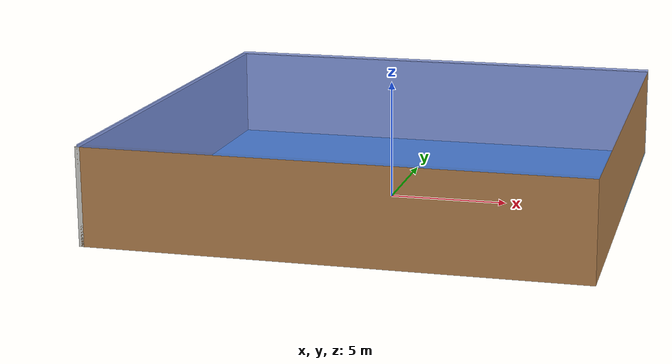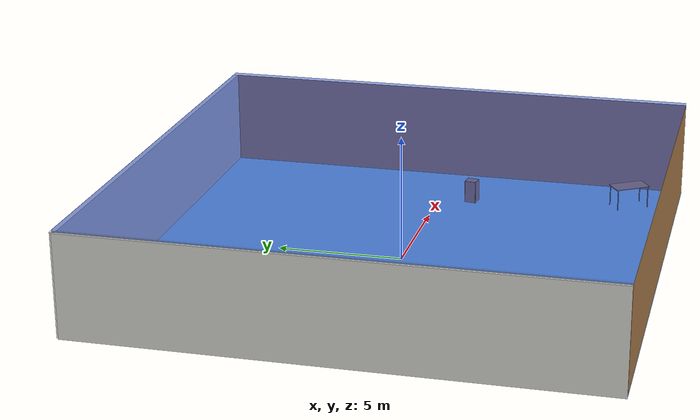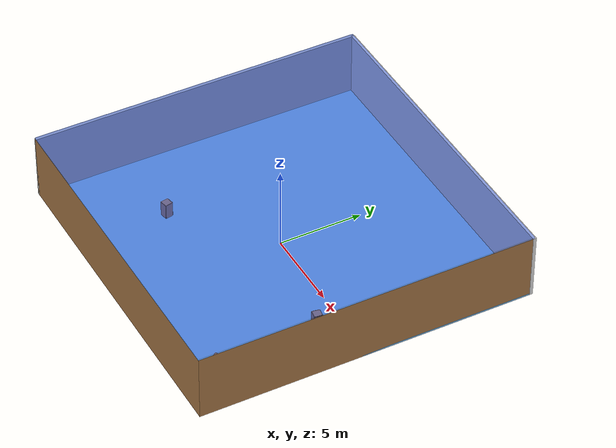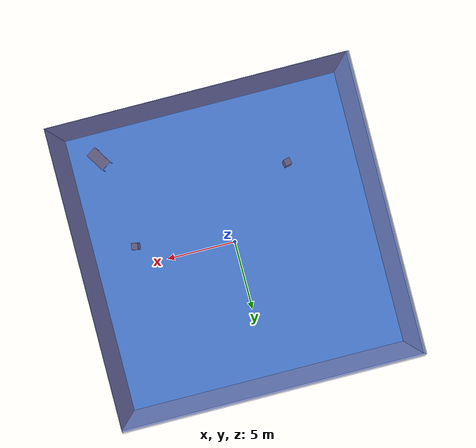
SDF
<sdf version="1.4">
 <world name="default">
  <physics type="ode">
   <max_step_size>0.001</max_step_size>
   <real_time_factor>1</real_time_factor>
   <real_time_update_rate>1000</real_time_update_rate>
   <gravity>0 0 -9.8</gravity>
  </physics>
  <scene><ambient>0.4 0.4 0.4 1</ambient><background>0.7 0.7 0.7 1</background><shadows>1</shadows></scene>
  <model name="Surrounding">
   <static>1</static>
   <link name="Ceiling">
    <collision name="Ceiling_Collision"><geometry><box><size>20 20 0.1</size></box></geometry></collision>
    <visual name="Ceiling_Visual">
     <geometry><box><size>20 20 0.1</size></box></geometry>
     <material>
      <script><uri>file://media/materials/scripts/gazebo.material</uri><name>Gazebo/BlueTransparent</name></script>
     </material>
    </visual>
    <pose>0 0 4.05 0 0 0</pose>
   </link>
   <link name="Wall_South">
    <collision name="Wall_South_Collision">
     <geometry><box><size>20 0 4</size></box></geometry>
     <pose>0 0 2 0 -0 0</pose>
    </collision>
    <visual name="Wall_South_Visual">
     <pose>0 0 2 0 -0 0</pose>
     <geometry><box><size>20 0 4</size></box></geometry>
     <material>
      <script><uri>file://media/materials/scripts/gazebo.material</uri><name>Gazebo/WoodFloor</name></script>
     </material>
    </visual>
    <velocity_decay><linear>0</linear><angular>0</angular></velocity_decay>
    <pose>0 -10 0 0 -0 0</pose>
   </link>
   <link name="Wall_East">
    <collision name="Wall_21_Collision">
     <geometry><box><size>20 0 4</size></box></geometry>
     <pose>0 0 2 0 -0 0</pose>
    </collision>
    <visual name="Wall_21_Visual">
     <pose>0 0 2 0 -0 0</pose>
     <geometry><box><size>20 0 4</size></box></geometry>
     <material>
      <script><uri>file://media/materials/scripts/gazebo.material</uri><name>Gazebo/Wood</name></script>
     </material>
    </visual>
    <velocity_decay><linear>0</linear><angular>0</angular></velocity_decay>
    <pose>10 0 0 0 -0 1.5708</pose>
   </link>
   <link name="Wall_North">
    <collision name="Wall_22_Collision">
     <geometry><box><size>20 0.2 4</size></box></geometry>
     <pose>0 0 2 0 -0 0</pose>
    </collision>
    <visual name="Wall_22_Visual">
     <pose>0 0 2 0 -0 0</pose>
     <geometry><box><size>20 0.2 4</size></box></geometry>
     <material>
      <script><uri>file://media/materials/scripts/gazebo.material</uri><name>Gazebo/White</name></script>
     </material>
    </visual>
    <velocity_decay><linear>0</linear><angular>0</angular></velocity_decay>
    <pose>0 10 0 0 -0 0</pose>
   </link>
   <link name="Wall_West">
    <collision name="Wall_23_Collision">
     <geometry><box><size>20 0.2 4</size></box></geometry>
     <pose>0 0 2 0 -0 0</pose>
    </collision>
    <visual name="Wall_23_Visual">
     <pose>0 0 2 0 -0 0</pose>
     <geometry><box><size>20 0.2 4</size></box></geometry>
     <material>
      <script><uri>file://media/materials/scripts/gazebo.material</uri><name>Gazebo/CeilingTiled</name></script>
     </material>
    </visual>
    <velocity_decay><linear>0</linear><angular>0</angular></velocity_decay>
    <pose>-10 0 0 0 0 -1.5708</pose>
   </link>
   <link name="Ground_link">
    <collision name="collision">
     <pose>0 0 .05 0 -0 0</pose>
     <geometry><box><size>20 20 0.1</size></box></geometry>
    </collision>
    <visual name="visual">
     <pose>0 0 .05 0 -0 0</pose>
     <geometry><box><size>20 20 0.1</size></box></geometry>
     <material>
      <script><uri>file://media/materials/scripts/gazebo.material</uri><name>Gazebo/SkyBlue</name></script>
     </material>
    </visual>
   </link>
   <static>1</static>
  </model>
  <spherical_coordinates>
   <surface_model>EARTH_WGS84</surface_model>
   <latitude_deg>0</latitude_deg>
   <longitude_deg>0</longitude_deg>
   <elevation>0</elevation>
   <heading_deg>0</heading_deg>
  </spherical_coordinates>
  <light name="lightball_0" type="diffuse">
   <diffuse>0.8 0.8 0.8 1</diffuse>
   <specular>0.2 0.2 0.2 1</specular>
   <attenuation>
    <range>100</range>
    <constant>0.7</constant>
    <linear>0.01</linear>
    <quadratic>0.001</quadratic>
   </attenuation>
   <direction>-0.5 0.1 -0.9</direction>
   <pose>9.11158440832 -5.73313560631 3.7761886335 0 0 0</pose>
  </light>
  <light name="lightball_1" type="diffuse">
   <diffuse>0.8 0.8 0.8 1</diffuse>
   <specular>0.2 0.2 0.2 1</specular>
   <attenuation>
    <range>100</range>
    <constant>0.7</constant>
    <linear>0.01</linear>
    <quadratic>0.001</quadratic>
   </attenuation>
   <direction>-0.5 0.1 -0.9</direction>
   <pose>6.15690863269 9.82371857751 2.02268112674 0 0 0</pose>
  </light>
  <light name="lightball_2" type="diffuse">
   <diffuse>0.8 0.8 0.8 1</diffuse>
   <specular>0.2 0.2 0.2 1</specular>
   <attenuation>
    <range>100</range>
    <constant>0.7</constant>
    <linear>0.01</linear>
    <quadratic>0.001</quadratic>
   </attenuation>
   <direction>-0.5 0.1 -0.9</direction>
   <pose>-9.93528250042 1.94003559378 0.520593847252 0 0 0</pose>
  </light>
  <include><uri>model://cabinet</uri><pose>-4.95902568494 -4.49147767741 0 0 0 0.186181958548</pose></include>
  <include><uri>model://table</uri><pose>7.78235608886 -7.98540345183 0 0 0 2.13222362978</pose></include>
  <include><uri>model://cabinet</uri><pose>6.88452298676 -1.43456214276 0 0 0 2.98347581965</pose></include>
 </world>
</sdf>

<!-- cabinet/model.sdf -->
<sdf version="1.5">
  <model name="cabinet">
    <static>true</static>
    <link name="cabinet_bottom_plate">
      <inertial>
        <pose>0 0 -1 0 0 0</pose>
        <inertia>
          <ixx>2.050000</ixx>
          <ixy>0</ixy>
          <ixz>0</ixz>
          <iyy>2.050000</iyy>
          <iyz>0</iyz>
          <izz>2.050000</izz>
        </inertia>
        <mass>25.000000</mass>
      </inertial>
      <collision name="cabinet_bottom_plate_geom">
        <pose>0 0 0.010000 0 0 0</pose>
        <geometry>
          <box>
            <size>0.450000 0.450000 0.020000</size>
          </box>
        </geometry>
      </collision>
      <visual name="cabinet_bottom_plate_geom_visual">
        <pose>0 0 0.010000 0 0 0</pose>
        <geometry>
          <box>
            <size>0.450000 0.450000 0.020000</size>
          </box>
        </geometry>
        <material>
          <script>
            <uri>model://media/materials/scripts/gazebo.material</uri>
            <name>Gazebo/Wood</name>
          </script>
        </material>
      </visual>
      <collision name="cabinet_bottom_plate_geom_cabinet_back_plate">
        <pose>0.235000 0 0.510000 0 0 0</pose>
        <geometry>
          <box>
            <size>0.020000 0.450000 1.020000</size>
          </box>
        </geometry>
      </collision>
      <visual name="cabinet_bottom_plate_geom_cabinet_back_plate_visual">
        <pose>0.235000 0 0.510000 0 0 0</pose>
        <geometry>
          <box>
            <size>0.020000 0.450000 1.020000</size>
          </box>
        </geometry>
        <material>
          <script>
            <uri>model://media/materials/scripts/gazebo.material</uri>
            <name>Gazebo/Wood</name>
          </script>
        </material>
      </visual>
      <collision name="cabinet_bottom_plate_geom_cabinet_left_plate">
        <pose>0 0.235000 0.510000 0 0 0</pose>
        <geometry>
          <box>
            <size>0.450000 0.020000 1.020000</size>
          </box>
        </geometry>
      </collision>
      <visual name="cabinet_bottom_plate_geom_cabinet_left_plate_visual">
        <pose>0 0.235000 0.510000 0 0 0</pose>
        <geometry>
          <box>
            <size>0.450000 0.020000 1.020000</size>
          </box>
        </geometry>
        <material>
          <script>
            <uri>model://media/materials/scripts/gazebo.material</uri>
            <name>Gazebo/Wood</name>
          </script>
        </material>
      </visual>
      <collision name="cabinet_bottom_plate_geom_cabinet_middle_plate">
        <pose>0 0 0.510000 0 0 0</pose>
        <geometry>
          <box>
            <size>0.450000 0.450000 0.020000</size>
          </box>
        </geometry>
      </collision>
      <visual name="cabinet_bottom_plate_geom_cabinet_middle_plate_visual">
        <pose>0 0 0.510000 0 0 0</pose>
        <geometry>
          <box>
            <size>0.450000 0.450000 0.020000</size>
          </box>
        </geometry>
        <material>
          <script>
            <uri>model://media/materials/scripts/gazebo.material</uri>
            <name>Gazebo/Wood</name>
          </script>
        </material>
      </visual>
      <collision name="cabinet_bottom_plate_geom_cabinet_right_plate">
        <pose>0 -0.235000 0.510000 0 0 0</pose>
        <geometry>
          <box>
            <size>0.450000 0.020000 1.020000</size>
          </box>
        </geometry>
      </collision>
      <visual name="cabinet_bottom_plate_geom_cabinet_right_plate_visual">
        <pose>0 -0.235000 0.510000 0 0 0</pose>
        <geometry>
          <box>
            <size>0.450000 0.020000 1.020000</size>
          </box>
        </geometry>
        <material>
          <script>
            <uri>model://media/materials/scripts/gazebo.material</uri>
            <name>Gazebo/Wood</name>
          </script>
        </material>
      </visual>
      <collision name="cabinet_bottom_plate_geom_cabinet_top_plate">
        <pose>0 0 1.010000 0 0 0</pose>
        <geometry>
          <box>
            <size>0.450000 0.450000 0.020000</size>
          </box>
        </geometry>
      </collision>
      <visual name="cabinet_bottom_plate_geom_cabinet_top_plate_visual">
        <pose>0 0 1.010000 0 0 0</pose>
        <geometry>
          <box>
            <size>0.450000 0.450000 0.020000</size>
          </box>
        </geometry>
        <material>
          <script>
            <uri>model://media/materials/scripts/gazebo.material</uri>
            <name>Gazebo/Wood</name>
          </script>
        </material>
      </visual>
    </link>
  </model>
</sdf>

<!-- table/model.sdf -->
<sdf version="1.5">
  <model name="table">
    <static>true</static>
    <link name="link">
      <collision name="surface">
        <pose>0 0 1.0 0 0 0</pose>
        <geometry>
          <box>
            <size>1.5 0.8 0.03</size>
          </box>
        </geometry>
        <surface>
          <friction>
            <ode>
              <mu>0.6</mu>
              <mu2>0.6</mu2>
            </ode>
          </friction>
        </surface>
      </collision>
      <visual name="visual1">
        <pose>0 0 1.0 0 0 0</pose>
        <geometry>
          <box>
            <size>1.5 0.8 0.03</size>
          </box>
        </geometry>
        <material>
          <script>
            <uri>model://media/materials/scripts/gazebo.material</uri>
            <name>Gazebo/Wood</name>
          </script>
        </material>
      </visual>
      <collision name="front_left_leg">
        <pose>0.68 0.38 0.5 0 0 0</pose>
        <geometry>
          <cylinder>
            <radius>0.02</radius>
            <length>1.0</length>
          </cylinder>
        </geometry>
      </collision>
      <visual name="front_left_leg">
        <pose>0.68 0.38 0.5 0 0 0</pose>
        <geometry>
          <cylinder>
            <radius>0.02</radius>
            <length>1.0</length>
          </cylinder>
        </geometry>
        <material>
          <script>
            <uri>model://media/materials/scripts/gazebo.material</uri>
            <name>Gazebo/Grey</name>
          </script>
        </material>
      </visual>
      <collision name="front_right_leg">
        <pose>0.68 -0.38 0.5 0 0 0</pose>
        <geometry>
          <cylinder>
            <radius>0.02</radius>
            <length>1.0</length>
          </cylinder>
        </geometry>
      </collision>
      <visual name="front_right_leg">
        <pose>0.68 -0.38 0.5 0 0 0</pose>
        <geometry>
          <cylinder>
            <radius>0.02</radius>
            <length>1.0</length>
          </cylinder>
        </geometry>
        <material>
          <script>
            <uri>model://media/materials/scripts/gazebo.material</uri>
            <name>Gazebo/Grey</name>
          </script>
        </material>
      </visual>
      <collision name="back_right_leg">
        <pose>-0.68 -0.38 0.5 0 0 0</pose>
        <geometry>
          <cylinder>
            <radius>0.02</radius>
            <length>1.0</length>
          </cylinder>
        </geometry>
      </collision>
      <visual name="back_right_leg">
        <pose>-0.68 -0.38 0.5 0 0 0</pose>
        <geometry>
          <cylinder>
            <radius>0.02</radius>
            <length>1.0</length>
          </cylinder>
        </geometry>
        <material>
          <script>
            <uri>model://media/materials/scripts/gazebo.material</uri>
            <name>Gazebo/Grey</name>
          </script>
        </material>
      </visual>
      <collision name="back_left_leg">
        <pose>-0.68 0.38 0.5 0 0 0</pose>
        <geometry>
          <cylinder>
            <radius>0.02</radius>
            <length>1.0</length>
          </cylinder>
        </geometry>
      </collision>
      <visual name="back_left_leg">
        <pose>-0.68 0.38 0.5 0 0 0</pose>
        <geometry>
          <cylinder>
            <radius>0.02</radius>
            <length>1.0</length>
          </cylinder>
        </geometry>
        <material>
          <script>
            <uri>model://media/materials/scripts/gazebo.material</uri>
            <name>Gazebo/Grey</name>
          </script>
        </material>
      </visual>
    </link>
  </model>
</sdf>
